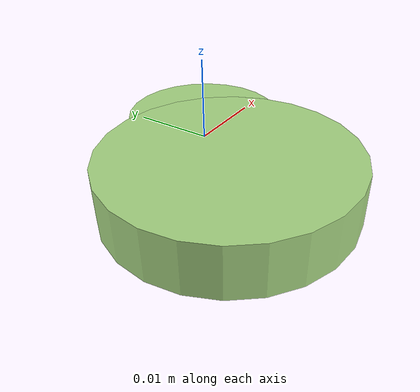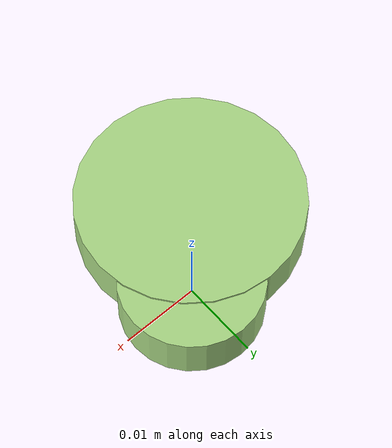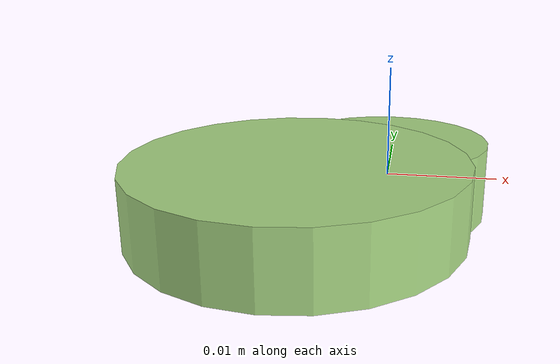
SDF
<?xml version="1.0" ?>
<!-- |    This document was autogenerated by xmacro from data/veggie_template/veggie_base.sdf.xacro  | -->
<!-- |    EDITING THIS FILE BY HAND IS NOT RECOMMENDED                                               | -->
<sdf version="1.8">
	<!-- Parameters -->
	<!-- Base -->
	<!-- Joint 0 -->
	<!-- Link 1 -->
	<!-- Joint 1 -->
	<!-- Link 2 -->
	<!-- Primitives -->
	<!-- All dimensions are half -->
	<!-- Object -->
	<model name="veggie">
		<!-- link0 -->
		<link name="link0">
			<inertial>
				<mass>0.0017290083753771543</mass>
				<inertia>
					<ixx>4.166976958375516e-08</ixx>
					<ixy>0</ixy>
					<ixz>0</ixz>
					<iyy>4.166976958375516e-08</iyy>
					<iyz>0</iyz>
					<izz>7.004278423550278e-08</izz>
				</inertia>
			</inertial>
			<visual name="link0_visual">
				<pose>0 0 0 0 0 0</pose>
				<geometry>
					<cylinder>
						<radius>0.009001153126166445</radius>
						<length>0.006792816908851591</length>
					</cylinder>
				</geometry>
				<material>
					<ambient>0.659 0.839 0.514 1</ambient>
					<diffuse>0.659 0.839 0.514 1</diffuse>
					<specular>0 0 0 0</specular>
					<emissive>0 0 0 1</emissive>
				</material>
			</visual>
			<collision name="link0_collision">
				<pose>0 0 0 0 0 0 </pose>
				<geometry>
					<cylinder>
						<radius>0.009001153126166445</radius>
						<length>0.006792816908851591</length>
					</cylinder>
				</geometry>
			</collision>
		</link>
		<!-- link1 -->
		<joint name="joint0" type="fixed">
			<pose relative_to="link0">-0.007061428254565535 -0.008307287211366393 0.0006118568052897211 0.0 0.0 0.0</pose>
			<parent>link0</parent>
			<child>link1</child>
		</joint>
		<link name="link1">
			<pose relative_to="joint0">0 0 0 0 0 0</pose>
			<inertial>
				<mass>0.003988702397681986</mass>
				<inertia>
					<ixx>2.185917571004332e-07</ixx>
					<ixy>0</ixy>
					<ixz>0</ixz>
					<iyy>2.185917571004332e-07</iyy>
					<iyz>0</iyz>
					<izz>4.120834516485158e-07</izz>
				</inertia>
			</inertial>
			<visual name="link1_visual">
				<pose>0 0 0 0 0 0</pose>
				<geometry>
					<cylinder>
						<radius>0.014374467589916198</radius>
						<length>0.006144650841978785</length>
					</cylinder>
				</geometry>
				<material>
					<ambient>0.659 0.839 0.514 1</ambient>
					<diffuse>0.659 0.839 0.514 1</diffuse>
					<specular>0 0 0 0</specular>
					<emissive>0 0 0 1</emissive>
				</material>
			</visual>
			<collision name="link1_collision">
				<pose>0 0 0 0 0 0 </pose>
				<geometry>
					<cylinder>
						<radius>0.014374467589916198</radius>
						<length>0.006144650841978785</length>
					</cylinder>
				</geometry>
			</collision>
		</link>
		<!-- link2 -->
	</model>
</sdf>
